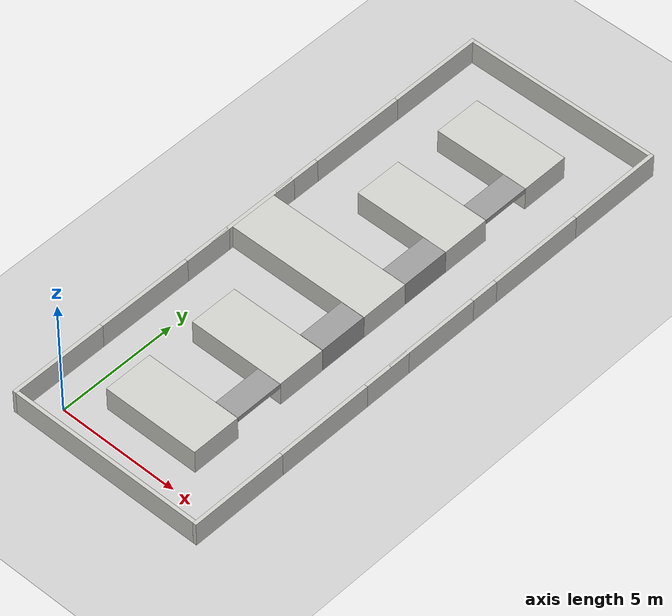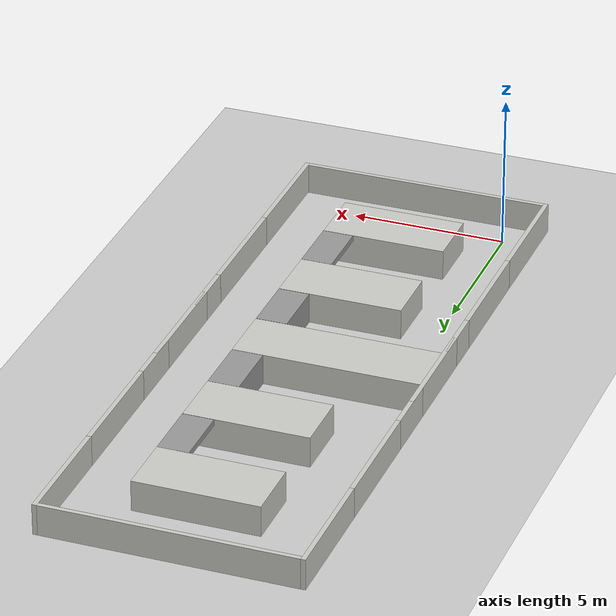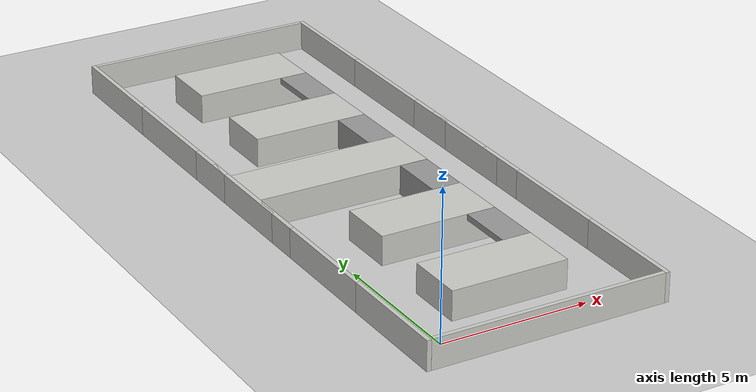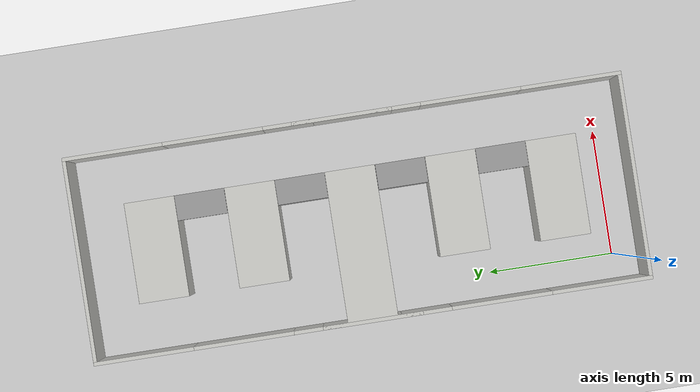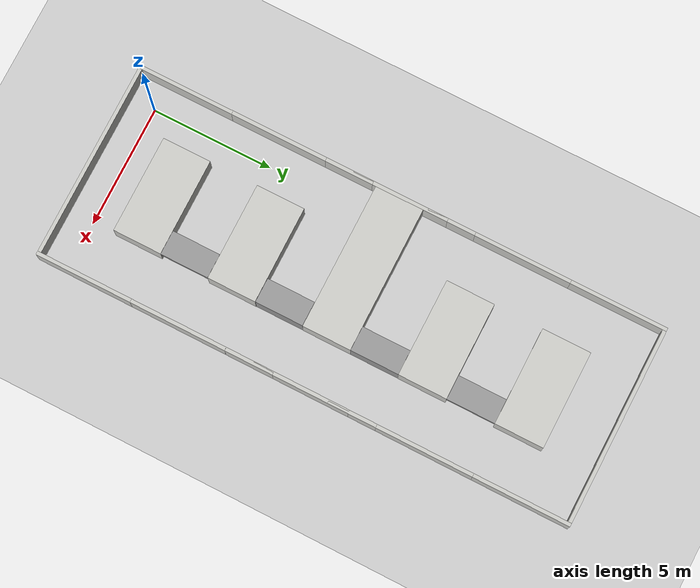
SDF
<sdf version="1.6">
 <world name="default">
  <light name="sun" type="directional">
   <pose>0 0 10 0 -0 0</pose>
   <diffuse>0.8 0.8 0.8 1</diffuse>
   <specular>0.1 0.1 0.1 1</specular>
   <attenuation>
    <range>1000</range>
    <constant>0.9</constant>
    <linear>0.01</linear>
    <quadratic>0.001</quadratic>
   </attenuation>
   <direction>-0.5 0.5 -1</direction>
  </light>
  <model name="ground_plane">
   <static>1</static>
   <link name="link">
    <collision name="collision">
     <geometry><plane><normal>0 0 1</normal><size>100 100</size></plane></geometry>
     <surface><friction><ode><mu>100</mu><mu2>50</mu2></ode></friction></surface>
    </collision>
    <visual name="visual">
     <cast_shadows>0</cast_shadows>
     <geometry><plane><normal>0 0 1</normal><size>100 100</size></plane></geometry>
     <material>
      <script><uri>file://media/materials/scripts/concrete.material</uri><name>Concrete/1</name></script>
     </material>
    </visual>
   </link>
  </model>
  <gravity>0 0 -9.8</gravity>
  <magnetic_field>6e-06 2.3e-05 -4.2e-05</magnetic_field>
  <atmosphere type="adiabatic"/>
  <physics name="default_physics" default="0" type="ode">
   <max_step_size>0.001</max_step_size>
   <real_time_factor>1.5</real_time_factor>
   <real_time_update_rate>1500</real_time_update_rate>
  </physics>
  <scene><ambient>0.4 0.4 0.4 1</ambient><background>0.7 0.7 0.7 1</background><shadows>1</shadows></scene>
  <spherical_coordinates>
   <surface_model>EARTH_WGS84</surface_model>
   <latitude_deg>0</latitude_deg>
   <longitude_deg>0</longitude_deg>
   <elevation>0</elevation>
   <heading_deg>0</heading_deg>
  </spherical_coordinates>
  <model name="wall_8meter">
   <static>1</static>
   <pose>3 -1.075 0 0 -0 0</pose>
   <link name="Wall">
    <collision name="Wall_Collision">
     <geometry><box><size>8 0.15 1</size></box></geometry>
     <pose>0 0 0.5 0 -0 0</pose>
    </collision>
    <visual name="Wall_Visual">
     <pose>0 0 0.5 0 -0 0</pose>
     <geometry><box><size>8 0.15 1</size></box></geometry>
     <material>
      <script><uri>file://media/materials/scripts/gazebo.material</uri><name>Gazebo/CeilingTiled</name></script>
      <ambient>1 0.764706 0.305882 1</ambient>
     </material>
    </visual>
   </link>
  </model>
  <model name="block_2x4m">
   <pose>3 2 0 0 0 -1.5708</pose>
   <link name="Block">
    <collision name="Block_Collision">
     <geometry><box><size>2 4 1</size></box></geometry>
     <pose>0 0 0.5 0 -0 0</pose>
    </collision>
    <visual name="Block_Visual">
     <pose>0 0 0.5 0 -0 0</pose>
     <geometry><box><size>2 4 1</size></box></geometry>
     <material>
      <script><uri>file://media/materials/scripts/gazebo.material</uri><name>Gazebo/CeilingTiled</name></script>
      <ambient>1 0.764706 0.305882 1</ambient>
     </material>
    </visual>
   </link>
   <static>1</static>
  </model>
  <model name="block_2x4m_clone">
   <pose>3 6 0 0 0 -1.5708</pose>
   <link name="Block">
    <collision name="Block_Collision">
     <geometry><box><size>2 4 1</size></box></geometry>
     <pose>0 0 0.5 0 -0 0</pose>
    </collision>
    <visual name="Block_Visual">
     <pose>0 0 0.5 0 -0 0</pose>
     <geometry><box><size>2 4 1</size></box></geometry>
     <material>
      <script><uri>file://media/materials/scripts/gazebo.material</uri><name>Gazebo/CeilingTiled</name></script>
      <ambient>1 0.764706 0.305882 1</ambient>
     </material>
    </visual>
   </link>
   <static>1</static>
  </model>
  <model name="block_2x6m_0">
   <pose>2 10 0 0 0 -1.5708</pose>
   <link name="Block">
    <collision name="Block_Collision">
     <geometry><box><size>2 6 1</size></box></geometry>
     <pose>0 0 0.5 0 -0 0</pose>
    </collision>
    <visual name="Block_Visual">
     <pose>0 0 0.5 0 -0 0</pose>
     <geometry><box><size>2 6 1</size></box></geometry>
     <material>
      <script><uri>file://media/materials/scripts/gazebo.material</uri><name>Gazebo/CeilingTiled</name></script>
      <ambient>1 0.764706 0.305882 1</ambient>
     </material>
    </visual>
   </link>
   <static>1</static>
  </model>
  <model name="block_2x4m_clone_clone">
   <pose>3 14 0 0 0 -1.5708</pose>
   <link name="Block">
    <collision name="Block_Collision">
     <geometry><box><size>2 4 1</size></box></geometry>
     <pose>0 0 0.5 0 -0 0</pose>
    </collision>
    <visual name="Block_Visual">
     <pose>0 0 0.5 0 -0 0</pose>
     <geometry><box><size>2 4 1</size></box></geometry>
     <material>
      <script><uri>file://media/materials/scripts/gazebo.material</uri><name>Gazebo/CeilingTiled</name></script>
      <ambient>1 0.764706 0.305882 1</ambient>
     </material>
    </visual>
   </link>
   <static>1</static>
  </model>
  <model name="block_2x4m_clone_clone_0">
   <pose>3 18 0 0 0 -1.5708</pose>
   <link name="Block">
    <collision name="Block_Collision">
     <geometry><box><size>2 4 1</size></box></geometry>
     <pose>0 0 0.5 0 -0 0</pose>
    </collision>
    <visual name="Block_Visual">
     <pose>0 0 0.5 0 -0 0</pose>
     <geometry><box><size>2 4 1</size></box></geometry>
     <material>
      <script><uri>file://media/materials/scripts/gazebo.material</uri><name>Gazebo/CeilingTiled</name></script>
      <ambient>1 0.764706 0.305882 1</ambient>
     </material>
    </visual>
   </link>
   <static>1</static>
  </model>
  <model name="wall_8meter_clone">
   <static>1</static>
   <pose>3 21.075 0 0 -0 0</pose>
   <link name="Wall">
    <collision name="Wall_Collision">
     <geometry><box><size>8 0.15 1</size></box></geometry>
     <pose>0 0 0.5 0 -0 0</pose>
    </collision>
    <visual name="Wall_Visual">
     <pose>0 0 0.5 0 -0 0</pose>
     <geometry><box><size>8 0.15 1</size></box></geometry>
     <material>
      <script><uri>file://media/materials/scripts/gazebo.material</uri><name>Gazebo/CeilingTiled</name></script>
      <ambient>1 0.764706 0.305882 1</ambient>
     </material>
    </visual>
   </link>
  </model>
  <model name="wall_4meter">
   <static>1</static>
   <pose>7.075 0.850301 0 0 0 -1.5708</pose>
   <link name="Wall">
    <collision name="Wall_Collision">
     <geometry><box><size>4 0.15 1</size></box></geometry>
     <pose>0 0 0.5 0 -0 0</pose>
    </collision>
    <visual name="Wall_Visual">
     <pose>0 0 0.5 0 -0 0</pose>
     <geometry><box><size>4 0.15 1</size></box></geometry>
     <material>
      <script><uri>file://media/materials/scripts/gazebo.material</uri><name>Gazebo/CeilingTiled</name></script>
      <ambient>1 0.764706 0.305882 1</ambient>
     </material>
    </visual>
   </link>
  </model>
  <model name="wall_4meter_clone">
   <static>1</static>
   <pose>7.075 4.84786 0 0 0 -1.5708</pose>
   <link name="Wall">
    <collision name="Wall_Collision">
     <geometry><box><size>4 0.15 1</size></box></geometry>
     <pose>0 0 0.5 0 -0 0</pose>
    </collision>
    <visual name="Wall_Visual">
     <pose>0 0 0.5 0 -0 0</pose>
     <geometry><box><size>4 0.15 1</size></box></geometry>
     <material>
      <script><uri>file://media/materials/scripts/gazebo.material</uri><name>Gazebo/CeilingTiled</name></script>
      <ambient>1 0.764706 0.305882 1</ambient>
     </material>
    </visual>
   </link>
  </model>
  <model name="wall_4meter_clone_clone">
   <static>1</static>
   <pose>7.075 10 0 0 0 -1.5708</pose>
   <link name="Wall">
    <collision name="Wall_Collision">
     <geometry><box><size>4 0.15 1</size></box></geometry>
     <pose>0 0 0.5 0 -0 0</pose>
    </collision>
    <visual name="Wall_Visual">
     <pose>0 0 0.5 0 -0 0</pose>
     <geometry><box><size>4 0.15 1</size></box></geometry>
     <material>
      <script><uri>file://media/materials/scripts/gazebo.material</uri><name>Gazebo/CeilingTiled</name></script>
      <ambient>1 0.764706 0.305882 1</ambient>
     </material>
    </visual>
   </link>
  </model>
  <model name="wall_4meter_clone_clone_0">
   <static>1</static>
   <pose>7.07501 15.1472 0 0 0 -1.5708</pose>
   <link name="Wall">
    <collision name="Wall_Collision">
     <geometry><box><size>4 0.15 1</size></box></geometry>
     <pose>0 0 0.5 0 -0 0</pose>
    </collision>
    <visual name="Wall_Visual">
     <pose>0 0 0.5 0 -0 0</pose>
     <geometry><box><size>4 0.15 1</size></box></geometry>
     <material>
      <script><uri>file://media/materials/scripts/gazebo.material</uri><name>Gazebo/CeilingTiled</name></script>
      <ambient>1 0.764706 0.305882 1</ambient>
     </material>
    </visual>
   </link>
  </model>
  <model name="wall_4meter_clone_clone_1">
   <static>1</static>
   <pose>7.07501 19.1477 0 0 0 -1.5708</pose>
   <link name="Wall">
    <collision name="Wall_Collision">
     <geometry><box><size>4 0.15 1</size></box></geometry>
     <pose>0 0 0.5 0 -0 0</pose>
    </collision>
    <visual name="Wall_Visual">
     <pose>0 0 0.5 0 -0 0</pose>
     <geometry><box><size>4 0.15 1</size></box></geometry>
     <material>
      <script><uri>file://media/materials/scripts/gazebo.material</uri><name>Gazebo/CeilingTiled</name></script>
      <ambient>1 0.764706 0.305882 1</ambient>
     </material>
    </visual>
   </link>
  </model>
  <model name="wall_2meter">
   <static>1</static>
   <pose>7.075 7.84902 0 0 0 -1.5708</pose>
   <link name="Wall">
    <collision name="Wall_Collision">
     <geometry><box><size>2 0.15 1</size></box></geometry>
     <pose>0 0 0.5 0 -0 0</pose>
    </collision>
    <visual name="Wall_Visual">
     <pose>0 0 0.5 0 -0 0</pose>
     <geometry><box><size>2 0.15 1</size></box></geometry>
     <material>
      <script><uri>file://media/materials/scripts/gazebo.material</uri><name>Gazebo/CeilingTiled</name></script>
      <ambient>1 0.764706 0.305882 1</ambient>
     </material>
    </visual>
   </link>
  </model>
  <model name="wall_2meter_clone_0">
   <static>1</static>
   <pose>7.075 12.1484 0 0 0 -1.5708</pose>
   <link name="Wall">
    <collision name="Wall_Collision">
     <geometry><box><size>2 0.15 1</size></box></geometry>
     <pose>0 0 0.5 0 -0 0</pose>
    </collision>
    <visual name="Wall_Visual">
     <pose>0 0 0.5 0 -0 0</pose>
     <geometry><box><size>2 0.15 1</size></box></geometry>
     <material>
      <script><uri>file://media/materials/scripts/gazebo.material</uri><name>Gazebo/CeilingTiled</name></script>
      <ambient>1 0.764706 0.305882 1</ambient>
     </material>
    </visual>
   </link>
  </model>
  <model name="wall_4meter_clone_0">
   <static>1</static>
   <pose>-1.075 0.850891 0 0 0 -1.5708</pose>
   <link name="Wall">
    <collision name="Wall_Collision">
     <geometry><box><size>4 0.15 1</size></box></geometry>
     <pose>0 0 0.5 0 -0 0</pose>
    </collision>
    <visual name="Wall_Visual">
     <pose>0 0 0.5 0 -0 0</pose>
     <geometry><box><size>4 0.15 1</size></box></geometry>
     <material>
      <script><uri>file://media/materials/scripts/gazebo.material</uri><name>Gazebo/CeilingTiled</name></script>
      <ambient>1 0.764706 0.305882 1</ambient>
     </material>
    </visual>
   </link>
  </model>
  <model name="wall_4meter_clone_0_clone">
   <static>1</static>
   <pose>-1.075 4.85066 0 0 0 -1.5708</pose>
   <link name="Wall">
    <collision name="Wall_Collision">
     <geometry><box><size>4 0.15 1</size></box></geometry>
     <pose>0 0 0.5 0 -0 0</pose>
    </collision>
    <visual name="Wall_Visual">
     <pose>0 0 0.5 0 -0 0</pose>
     <geometry><box><size>4 0.15 1</size></box></geometry>
     <material>
      <script><uri>file://media/materials/scripts/gazebo.material</uri><name>Gazebo/CeilingTiled</name></script>
      <ambient>1 0.764706 0.305882 1</ambient>
     </material>
    </visual>
   </link>
  </model>
  <model name="wall_4meter_clone_0_clone_0">
   <static>1</static>
   <pose>-1.075 19.1493 0 0 0 -1.5708</pose>
   <link name="Wall">
    <collision name="Wall_Collision">
     <geometry><box><size>4 0.15 1</size></box></geometry>
     <pose>0 0 0.5 0 -0 0</pose>
    </collision>
    <visual name="Wall_Visual">
     <pose>0 0 0.5 0 -0 0</pose>
     <geometry><box><size>4 0.15 1</size></box></geometry>
     <material>
      <script><uri>file://media/materials/scripts/gazebo.material</uri><name>Gazebo/CeilingTiled</name></script>
      <ambient>1 0.764706 0.305882 1</ambient>
     </material>
    </visual>
   </link>
  </model>
  <model name="wall_4meter_clone_0_clone_1">
   <static>1</static>
   <pose>-1.075 15.1546 0 0 0 -1.5708</pose>
   <link name="Wall">
    <collision name="Wall_Collision">
     <geometry><box><size>4 0.15 1</size></box></geometry>
     <pose>0 0 0.5 0 -0 0</pose>
    </collision>
    <visual name="Wall_Visual">
     <pose>0 0 0.5 0 -0 0</pose>
     <geometry><box><size>4 0.15 1</size></box></geometry>
     <material>
      <script><uri>file://media/materials/scripts/gazebo.material</uri><name>Gazebo/CeilingTiled</name></script>
      <ambient>1 0.764706 0.305882 1</ambient>
     </material>
    </visual>
   </link>
  </model>
  <model name="wall_4meter_clone_0_clone_2">
   <static>1</static>
   <pose>-1.075 10 0 0 0 -1.5708</pose>
   <link name="Wall">
    <collision name="Wall_Collision">
     <geometry><box><size>4 0.15 1</size></box></geometry>
     <pose>0 0 0.5 0 -0 0</pose>
    </collision>
    <visual name="Wall_Visual">
     <pose>0 0 0.5 0 -0 0</pose>
     <geometry><box><size>4 0.15 1</size></box></geometry>
     <material>
      <script><uri>file://media/materials/scripts/gazebo.material</uri><name>Gazebo/CeilingTiled</name></script>
      <ambient>1 0.764706 0.305882 1</ambient>
     </material>
    </visual>
   </link>
  </model>
  <model name="wall_2meter_clone_0_clone">
   <static>1</static>
   <pose>-1.075 12.1627 0 0 0 -1.5708</pose>
   <link name="Wall">
    <collision name="Wall_Collision">
     <geometry><box><size>2 0.15 1</size></box></geometry>
     <pose>0 0 0.5 0 -0 0</pose>
    </collision>
    <visual name="Wall_Visual">
     <pose>0 0 0.5 0 -0 0</pose>
     <geometry><box><size>2 0.15 1</size></box></geometry>
     <material>
      <script><uri>file://media/materials/scripts/gazebo.material</uri><name>Gazebo/CeilingTiled</name></script>
      <ambient>1 0.764706 0.305882 1</ambient>
     </material>
    </visual>
   </link>
  </model>
  <model name="wall_2meter_clone_0_clone_0">
   <static>1</static>
   <pose>-1.075 7.84536 0 0 0 -1.5708</pose>
   <link name="Wall">
    <collision name="Wall_Collision">
     <geometry><box><size>2 0.15 1</size></box></geometry>
     <pose>0 0 0.5 0 -0 0</pose>
    </collision>
    <visual name="Wall_Visual">
     <pose>0 0 0.5 0 -0 0</pose>
     <geometry><box><size>2 0.15 1</size></box></geometry>
     <material>
      <script><uri>file://media/materials/scripts/gazebo.material</uri><name>Gazebo/CeilingTiled</name></script>
      <ambient>1 0.764706 0.305882 1</ambient>
     </material>
    </visual>
   </link>
  </model>
  <model name="unit_box_0">
   <pose>4.49216 8.0012 0.5 0 -0 7e-06</pose>
   <link name="link">
    <inertial>
     <mass>1</mass>
     <inertia>
      <ixx>0.166667</ixx>
      <ixy>0</ixy>
      <ixz>0</ixz>
      <iyy>0.166667</iyy>
      <iyz>0</iyz>
      <izz>0.166667</izz>
     </inertia>
    </inertial>
    <collision name="collision"><geometry><box><size>1 1.97904 1</size></box></geometry></collision>
    <visual name="visual">
     <geometry><box><size>1 1.97904 1</size></box></geometry>
     <material>
      <script><name>Gazebo/Grey</name><uri>file://media/materials/scripts/gazebo.material</uri></script>
     </material>
    </visual>
   </link>
  </model>
  <model name="unit_box_0_clone">
   <pose>4.49559 12.0008 0.499995 0 9e-06 1.4e-05</pose>
   <link name="link">
    <inertial>
     <mass>1</mass>
     <inertia>
      <ixx>0.166667</ixx>
      <ixy>0</ixy>
      <ixz>0</ixz>
      <iyy>0.166667</iyy>
      <iyz>0</iyz>
      <izz>0.166667</izz>
     </inertia>
    </inertial>
    <collision name="collision"><geometry><box><size>1 1.99343 1</size></box></geometry></collision>
    <visual name="visual">
     <geometry><box><size>1 1.99343 1</size></box></geometry>
     <material>
      <script><name>Gazebo/Grey</name><uri>file://media/materials/scripts/gazebo.material</uri></script>
     </material>
    </visual>
   </link>
  </model>
  <model name="unit_box_1">
   <pose>4.50427 4.00111 0.900333 0 -0 1e-06</pose>
   <link name="unit_box_1::link">
    <inertial>
     <mass>1</mass>
     <inertia>
      <ixx>0.166667</ixx>
      <ixy>0</ixy>
      <ixz>0</ixz>
      <iyy>0.166667</iyy>
      <iyz>0</iyz>
      <izz>0.166667</izz>
     </inertia>
    </inertial>
    <collision name="collision"><geometry><box><size>1 1.98966 0.198669</size></box></geometry></collision>
    <visual name="visual">
     <geometry><box><size>1 1.98966 0.198669</size></box></geometry>
     <material>
      <script><name>Gazebo/Grey</name><uri>file://media/materials/scripts/gazebo.material</uri></script>
     </material>
    </visual>
    <gravity>0</gravity>
   </link>
  </model>
  <model name="unit_box_1_clone">
   <pose>4.50006 16.0024 0.900333 0 -0 1e-06</pose>
   <link name="unit_box_1::link">
    <inertial>
     <mass>1</mass>
     <inertia>
      <ixx>0.166667</ixx>
      <ixy>0</ixy>
      <ixz>0</ixz>
      <iyy>0.166667</iyy>
      <iyz>0</iyz>
      <izz>0.166667</izz>
     </inertia>
    </inertial>
    <collision name="collision"><geometry><box><size>1 1.98966 0.198669</size></box></geometry></collision>
    <visual name="visual">
     <geometry><box><size>1 1.98966 0.198669</size></box></geometry>
     <material>
      <script><name>Gazebo/Grey</name><uri>file://media/materials/scripts/gazebo.material</uri></script>
     </material>
    </visual>
    <gravity>0</gravity>
   </link>
  </model>
 </world>
</sdf>
